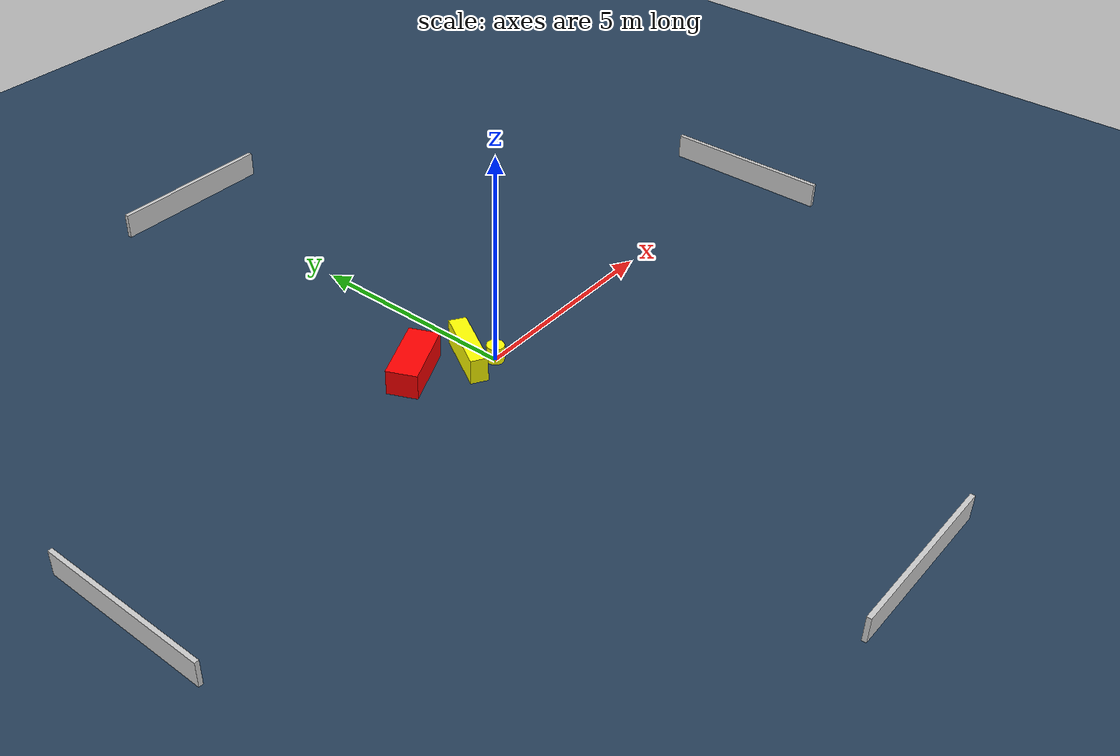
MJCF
<?xml version="1.0" ?>
<mujoco model="generated_environment">
  <option timestep="0.01" integrator="RK4" cone="elliptic"/>
  <default>
    <geom density="1"/>
  </default>
  <asset>
    <texture builtin="gradient" height="3072" name="skybox" rgb1="0.3 0.5 0.7" rgb2="0 0 0" type="skybox" width="512"/>
    <texture builtin="checker" height="300" name="groundplane" rgb1="0.2 0.3 0.4" rgb2="0.1 0.2 0.3" type="2d" width="300"/>
    <material name="groundplane" reflectance="0.2" texrepeat="5 5" texture="groundplane"/>
  </asset>
  <worldbody>
    <light dir="0 0 -1" directional="true" pos="0 0 1.5"/>
    <geom condim="3" friction="0.5 0.005 0.001" material="groundplane" name="floor" pos="0 0 0" size="0 0 0.05" type="plane"/>
    <body name="walls">
      <geom name="wall_1" condim="4" pos="-10.0 0.0 0.3" rgba="0.800000011920929 0.800000011920929 0.800000011920929 1.0" size="0.05 2.0 0.3" type="box"/>
      <geom name="wall_2" condim="4" pos="10.0 0.0 0.3" rgba="0.800000011920929 0.800000011920929 0.800000011920929 1.0" size="0.05 2.0 0.3" type="box"/>
      <geom name="wall_3" condim="4" pos="0.0 -10.0 0.3" rgba="0.800000011920929 0.800000011920929 0.800000011920929 1.0" size="2.0 0.05 0.3" type="box"/>
      <geom name="wall_4" condim="4" pos="0.0 10.0 0.3" rgba="0.800000011920929 0.800000011920929 0.800000011920929 1.0" size="2.0 0.05 0.3" type="box"/>
    </body>
    <body name="robot">
      <joint name="joint_x" type="slide" pos="0 0 0" axis="1 0 0"/>
      <joint name="joint_y" type="slide" pos="0 0 0" axis="0 1 0"/>
      <geom name="robot" type="cylinder" pos="0.0 0.0 0.2" size="0.2 0.2 0.0" mass="5.0" friction="1.0 0.005 0.0001" condim="4" rgba="1.0 1.0 0.0 1.0"/>
    </body>
    <body name="obstacle_1_movable">
      <geom name="obstacle_1_movable" condim="4" pos="-0.42194796812062313 0.41055985302184445 0.3" euler="0 0 328.9020745074317" friction="0.0 0.005 0.001" rgba="1.0 1.0 0.0 1.0" size="0.20061857737310027 0.7734962841256139 0.3" type="box" mass="0.1"/>
      <joint type="free"/>
    </body>
    <body name="obstacle_2_static">
      <geom name="obstacle_2_static" condim="4" pos="-1.515949431718962 1.002699213376952 0.3" euler="0 0 204.58080791981445" friction="0.0 0.005 0.001" rgba="1.0 0.0 0.0 1.0" size="0.791726886407113 0.3545093331078004 0.3" type="box"/>
    </body>
  </worldbody>
  <actuator>
    <motor name="actuator_x" joint="joint_x" gear="1" ctrlrange="-1 1"/>
    <motor name="actuator_y" joint="joint_y" gear="1" ctrlrange="-1 1"/>
  </actuator>
</mujoco>
